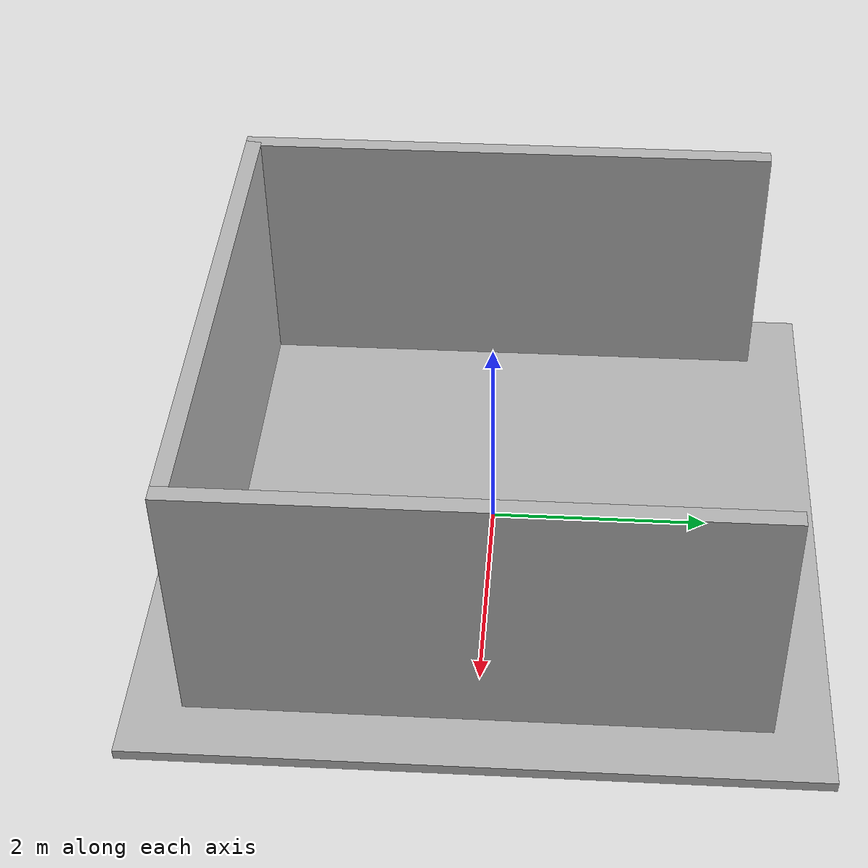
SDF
<sdf version="1.7">
 <world name="workshop">
  <light name="sun_light" type="directional">
   <pose>0.08 0.6 2 0 0 0</pose>
   <direction>-0.2 -0.5 -1</direction>
   <diffuse>0.6 0.6 0.6 1</diffuse>
   <specular>0.05 0.05 0.05 1</specular>
  </light>
  <light name="overhead_light_1" type="spot">
   <pose>0 0 3 0 0 0</pose>
   <diffuse>0.35 0.35 0.35 1</diffuse>
   <specular>0.01 0.01 0.01 1</specular>
   <attenuation>
    <range>6</range>
    <constant>0.3</constant>
    <linear>0.01</linear>
    <quadratic>0.001</quadratic>
   </attenuation>
   <direction>0 0 -1</direction>
   <spot><inner_angle>0.6</inner_angle><outer_angle>1.0</outer_angle><falloff>0.5</falloff></spot>
  </light>
  <light name="overhead_light_2" type="spot">
   <pose>-1.5 -1 3 0 0 0</pose>
   <diffuse>0.5 0.5 0.5 1</diffuse>
   <specular>0.01 0.01 0.01 1</specular>
   <attenuation>
    <range>6</range>
    <constant>0.4</constant>
    <linear>0.01</linear>
    <quadratic>0.001</quadratic>
   </attenuation>
   <direction>0 0 -1</direction>
   <spot><inner_angle>0.6</inner_angle><outer_angle>1.0</outer_angle><falloff>0.5</falloff></spot>
   <cast_shadows>false</cast_shadows>
  </light>
  <scene><ambient>0.12 0.12 0.12 1</ambient><background>0.5 0.5 0.5 1</background></scene>
  <model name="floor">
   <static>true</static>
   <link name="floor_link">
    <collision name="floor_collision"><geometry><box><size>6 6 0.1</size></box></geometry></collision>
    <visual name="floor_visual"><geometry><box><size>6 6 0.1</size></box></geometry></visual>
   </link>
  </model>
  <model name="Wall_left">
   <static>true</static>
   <link name="wall_left_link">
    <collision name="wall_left_collision"><geometry><box><size>5 0.15 2.5</size></box></geometry></collision>
    <visual name="wall_left_visual"><geometry><box><size>5 0.15 2.5</size></box></geometry></visual>
   </link>
   <pose>2.425 0 1.25 0 0 1.5708</pose>
  </model>
  <model name="Wall_back">
   <static>true</static>
   <link name="wall_back_link">
    <collision name="wall_back_collision"><geometry><box><size>5 0.15 2.5</size></box></geometry></collision>
    <visual name="wall_back_visual"><geometry><box><size>5 0.15 2.5</size></box></geometry></visual>
   </link>
   <pose>0 -2.425 1.25 0 0 0</pose>
  </model>
  <model name="Wall_right">
   <static>true</static>
   <link name="wall_right_link">
    <collision name="wall_right_collision"><geometry><box><size>5 0.15 2.5</size></box></geometry></collision>
    <visual name="wall_right_visual"><geometry><box><size>5 0.15 2.5</size></box></geometry></visual>
   </link>
   <pose>-2.425 0 1.25 0 0 1.5708</pose>
  </model>
  <model name="table_camera">
   <static>true</static>
   <link name="table_camera_link">
    <sensor name="rgb_camera_table" type="camera">
     <pose>0 -2 2 0 0.5 1.57</pose>
     <update_rate>30</update_rate>
     <camera>
      <horizontal_fov>1.5</horizontal_fov>
      <image><width>320</width><height>240</height><format>R8G8B8</format></image>
      <clip><near>0.1</near><far>10</far></clip>
     </camera>
     <plugin name="table_camera_plugin" filename="libgazebo_ros_camera.so">
      <ros>
       <namespace>/table_camera</namespace>
       <remapping>image_raw:=/table_camera/rgb_camera_table/image_raw</remapping>
      </ros>
     </plugin>
    </sensor>
   </link>
  </model>
  <model name="shelf_camera">
   <static>true</static>
   <link name="shelf_camera_link">
    <sensor name="rgb_camera_shelf" type="camera">
     <pose>-1.5 -2.3 1.45 0 0.5 1.57</pose>
     <update_rate>30</update_rate>
     <camera>
      <horizontal_fov>1.5</horizontal_fov>
      <image><width>320</width><height>240</height><format>R8G8B8</format></image>
      <clip><near>0.1</near><far>5.0</far></clip>
     </camera>
     <plugin name="shelf_camera_plugin" filename="libgazebo_ros_camera.so">
      <ros>
       <namespace>/shelf_camera</namespace>
       <remapping>image_raw:=/shelf_camera/rgb_camera_shelf/image_raw</remapping>
      </ros>
     </plugin>
    </sensor>
   </link>
  </model>
  <model name="room_camera">
   <static>true</static>
   <link name="room_camera_link">
    <sensor name="room_camera" type="camera">
     <pose>-0.5 1.3 2 0 0.5 -1.57</pose>
     <camera>
      <horizontal_fov>1.3962634</horizontal_fov>
      <image><width>320</width><height>240</height><format>R8G8B8</format></image>
      <clip><near>0.1</near><far>100</far></clip>
     </camera>
     <plugin name="room_camera_plugin" filename="libgazebo_ros_camera.so">
      <ros>
       <namespace>/room_camera</namespace>
       <remapping>image_raw:=image_raw</remapping>
       <remapping>camera_info:=camera_info</remapping>
      </ros>
      <cameraName>room_camera</cameraName>
      <frameName>room_camera_link</frameName>
     </plugin>
    </sensor>
   </link>
  </model>
 </world>
</sdf>
